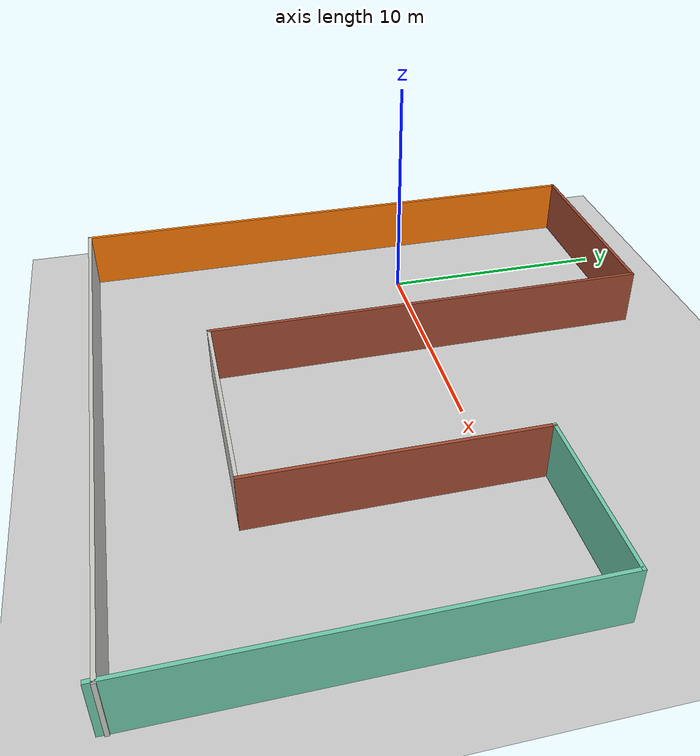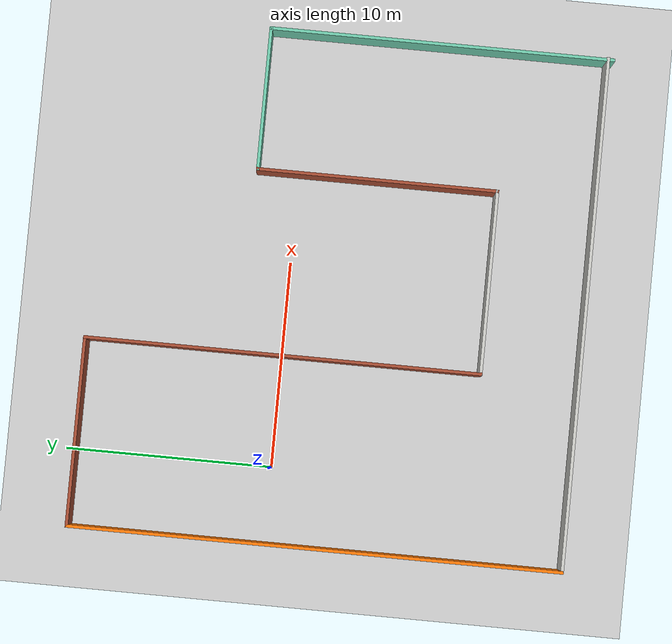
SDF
<sdf version="1.6">
 <world name="default">
  <light name="sun" type="directional">
   <pose>0 0 10 0 -0 0</pose>
   <diffuse>0.8 0.8 0.8 1</diffuse>
   <specular>0.1 0.1 0.1 1</specular>
   <attenuation>
    <range>1000</range>
    <constant>0.9</constant>
    <linear>0.01</linear>
    <quadratic>0.001</quadratic>
   </attenuation>
   <direction>-0.5 0.5 -1</direction>
  </light>
  <model name="ground_plane">
   <static>1</static>
   <link name="link">
    <collision name="collision">
     <geometry><plane><normal>0 0 1</normal><size>100 100</size></plane></geometry>
     <surface><friction><ode><mu>100</mu><mu2>50</mu2></ode></friction></surface>
    </collision>
    <visual name="visual">
     <cast_shadows>0</cast_shadows>
     <geometry><plane><normal>0 0 1</normal><size>100 100</size></plane></geometry>
     <material>
      <script><uri>file://media/materials/scripts/gazebo.material</uri><name>Gazebo/Grey</name></script>
     </material>
    </visual>
   </link>
  </model>
  <gravity>0 0 -9.8</gravity>
  <magnetic_field>6e-06 2.3e-05 -4.2e-05</magnetic_field>
  <atmosphere type="adiabatic"/>
  <physics name="default_physics" default="0" type="ode">
   <max_step_size>0.001</max_step_size>
   <real_time_factor>1</real_time_factor>
   <real_time_update_rate>1000</real_time_update_rate>
  </physics>
  <scene><ambient>0.4 0.4 0.4 1</ambient><background>0.7 0.7 0.7 1</background><shadows>1</shadows></scene>
  <spherical_coordinates>
   <surface_model>EARTH_WGS84</surface_model>
   <latitude_deg>0</latitude_deg>
   <longitude_deg>0</longitude_deg>
   <elevation>0</elevation>
   <heading_deg>0</heading_deg>
  </spherical_coordinates>
  <model name="ulisu">
   <pose>8.7214 -2.58064 0 0 -0 0</pose>
   <link name="Wall_1">
    <collision name="Wall_1_Collision">
     <geometry><box><size>24 0.15 2.5</size></box></geometry>
     <pose>0 0 1.25 0 -0 0</pose>
    </collision>
    <visual name="Wall_1_Visual">
     <pose>0 0 1.25 0 -0 0</pose>
     <geometry><box><size>24 0.15 2.5</size></box></geometry>
     <material>
      <script><uri>file://media/materials/scripts/gazebo.material</uri><name>Gazebo/Grey</name></script>
      <ambient>0.996078 0.47451 0.0196078 1</ambient>
     </material>
    </visual>
    <pose>-12.425 0.125 0 0 -0 1.5708</pose>
   </link>
   <link name="Wall_10">
    <collision name="Wall_10_Collision">
     <geometry><box><size>25 0.15 2.5</size></box></geometry>
     <pose>0 0 1.25 0 -0 0</pose>
    </collision>
    <visual name="Wall_10_Visual">
     <pose>0 0 1.25 0 -0 0</pose>
     <geometry><box><size>25 0.15 2.5</size></box></geometry>
     <material>
      <script><uri>file://media/materials/scripts/gazebo.material</uri><name>Gazebo/CeilingTiled</name></script>
      <ambient>0.435294 0.796078 0.67451 1</ambient>
     </material>
    </visual>
    <pose>0 -11.8 0 0 -0 0</pose>
   </link>
   <link name="Wall_2">
    <collision name="Wall_2_Collision">
     <geometry><box><size>9.25 0.15 2.5</size></box></geometry>
     <pose>0 0 1.25 0 -0 0</pose>
    </collision>
    <visual name="Wall_2_Visual">
     <pose>0 0 1.25 0 -0 0</pose>
     <geometry><box><size>9.25 0.15 2.5</size></box></geometry>
     <material>
      <script><uri>file://media/materials/scripts/gazebo.material</uri><name>Gazebo/Bricks</name></script>
      <ambient>0.760784 0.662745 0.627451 1</ambient>
     </material>
    </visual>
    <pose>-7.875 12.05 0 0 -0 0</pose>
   </link>
   <link name="Wall_3">
    <collision name="Wall_3_Collision">
     <geometry><box><size>19.25 0.15 2.5</size></box></geometry>
     <pose>0 0 1.25 0 -0 0</pose>
    </collision>
    <visual name="Wall_3_Visual">
     <pose>0 0 1.25 0 -0 0</pose>
     <geometry><box><size>19.25 0.15 2.5</size></box></geometry>
     <material>
      <script><uri>file://media/materials/scripts/gazebo.material</uri><name>Gazebo/Bricks</name></script>
      <ambient>0.760784 0.662745 0.627451 1</ambient>
     </material>
    </visual>
    <pose>-3.325 2.5 0 0 0 -1.5708</pose>
   </link>
   <link name="Wall_4">
    <collision name="Wall_4_Collision">
     <geometry><box><size>9 0.15 2.5</size></box></geometry>
     <pose>0 0 1.25 0 -0 0</pose>
    </collision>
    <visual name="Wall_4_Visual">
     <pose>0 0 1.25 0 -0 0</pose>
     <geometry><box><size>9 0.15 2.5</size></box></geometry>
     <material>
      <script><uri>file://media/materials/scripts/gazebo.material</uri><name>Gazebo/CeilingTiled</name></script>
      <ambient>0.760784 0.662745 0.627451 1</ambient>
     </material>
    </visual>
    <pose>1.1 -7.05 0 0 -0 0</pose>
   </link>
   <link name="Wall_5">
    <collision name="Wall_5_Collision">
     <geometry><box><size>11.75 0.15 2.5</size></box></geometry>
     <pose>0 0 1.25 0 -0 0</pose>
    </collision>
    <visual name="Wall_5_Visual">
     <pose>0 0 1.25 0 -0 0</pose>
     <geometry><box><size>11.75 0.15 2.5</size></box></geometry>
     <material>
      <script><uri>file://media/materials/scripts/gazebo.material</uri><name>Gazebo/Bricks</name></script>
      <ambient>1 1 1 1</ambient>
     </material>
    </visual>
    <pose>5.525 -1.25 0 0 -0 1.5708</pose>
   </link>
   <link name="Wall_6">
    <collision name="Wall_6_Collision">
     <geometry><box><size>7 0.15 2.5</size></box></geometry>
     <pose>0 0 1.25 0 -0 0</pose>
    </collision>
    <visual name="Wall_6_Visual">
     <pose>0 0 1.25 0 -0 0</pose>
     <geometry><box><size>7 0.15 2.5</size></box></geometry>
     <material>
      <script><uri>file://media/materials/scripts/gazebo.material</uri><name>Gazebo/Grey</name></script>
      <ambient>0.435294 0.796078 0.67451 1</ambient>
     </material>
    </visual>
    <pose>8.95 4.55 0 0 -0 0</pose>
   </link>
   <link name="Wall_7">
    <collision name="Wall_7_Collision">
     <geometry><box><size>16.75 0.15 2.5</size></box></geometry>
     <pose>0 0 1.25 0 -0 0</pose>
    </collision>
    <visual name="Wall_7_Visual">
     <pose>0 0 1.25 0 -0 0</pose>
     <geometry><box><size>16.75 0.15 2.5</size></box></geometry>
     <material>
      <script><uri>file://media/materials/scripts/gazebo.material</uri><name>Gazebo/Grey</name></script>
      <ambient>0.435294 0.796078 0.67451 1</ambient>
     </material>
    </visual>
    <pose>12.375 -3.75 0 0 0 -1.5708</pose>
   </link>
   <static>1</static>
  </model>
 </world>
</sdf>
